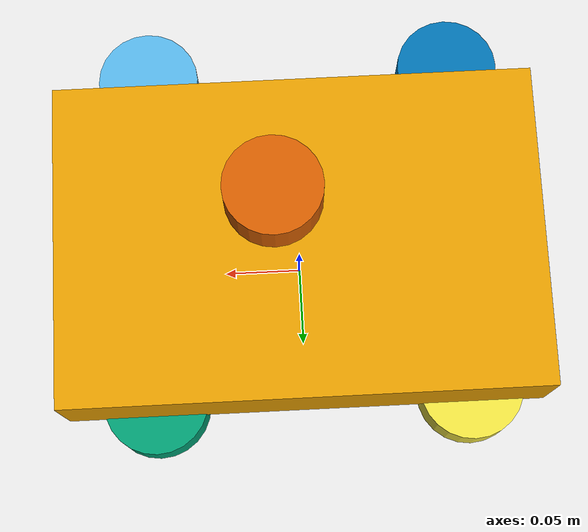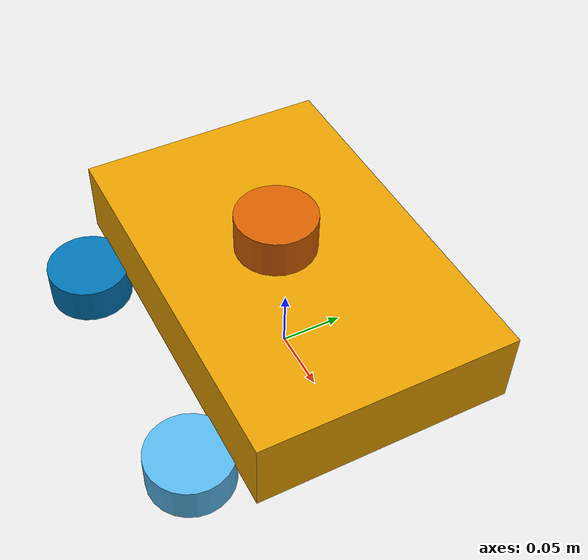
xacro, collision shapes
<?xml version="1.0"?>
<robot name="hai_robot" xmlns:xacro="http://www.ros.org/wiki/xacro">

  <xacro:include filename="$(find mohd_shan)/description/robot_core.xacro"/>
  <xacro:include filename="$(find mohd_shan)/description/lidar.xacro"/>
  <xacro:include filename="$(find mohd_shan)/description/gazebo_control.xacro"/>

</robot>

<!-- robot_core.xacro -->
<robot name="hai_robot" xmlns:xacro="http://www.ros.org/wiki/xacro">

  <!-- BASE LINK -->
  <link name="base_link">
    <inertial>
      <origin xyz="0 0 0.075" rpy="0 0 0"/>
      <mass value="8.0"/>
      <inertia ixx="0.08" iyy="0.12" izz="0.18" ixy="0.0" ixz="0.0" iyz="0.0"/>
    </inertial>

    <visual>
      <geometry>
        <mesh filename="package://mohd_shan/meshes/base_link.stl" scale="0.001 0.001 0.001"/>
      </geometry>
    </visual>

    <collision>
      <origin xyz="0 0 0.075"/>
      <geometry>
        <box size="0.30 0.20 0.06"/>
      </geometry>
    </collision>
  </link>

  <!-- ========= WHEELS ========= -->

  <!-- FRONT RIGHT -->
  <link name="Link_FR">
    <inertial>
      <mass value="0.35"/>
      <inertia ixx="0.001" iyy="0.001" izz="0.001"/>
    </inertial>

    <visual>
      <origin xyz="-0.095294 0.124382 -0.009657"/>
      <geometry>
        <mesh filename="package://mohd_shan/meshes/wheel_FR_1.stl" scale="0.001 0.001 0.001"/>
      </geometry>
    </visual>

    <!-- FIXED: collision aligned -->
    <collision>
      <geometry>
        <cylinder radius="0.033" length="0.03"/>
      </geometry>
    </collision>
  </link>

  <joint name="joint_FR" type="continuous">
    <parent link="base_link"/>
    <child link="Link_FR"/>
    <origin xyz="0.095294 -0.124382 0.033"/>
    <axis xyz="0 -1 0"/>
    <dynamics damping="1.0" friction="0.2"/>
  </joint>

  <!-- FRONT LEFT -->
  <link name="Link_FL">
    <inertial>
      <mass value="0.35"/>
      <inertia ixx="0.001" iyy="0.001" izz="0.001"/>
    </inertial>

    <visual>
      <origin xyz="-0.095294 -0.090848 -0.009657"/>
      <geometry>
        <mesh filename="package://mohd_shan/meshes/wheel_FL_1.stl" scale="0.001 0.001 0.001"/>
      </geometry>
    </visual>

    <collision>
      <geometry>
        <cylinder radius="0.033" length="0.03"/>
      </geometry>
    </collision>
  </link>

  <joint name="joint_FL" type="continuous">
    <parent link="base_link"/>
    <child link="Link_FL"/>
    <origin xyz="0.095294 0.090848 0.033"/>
    <axis xyz="0 -1 0"/>
    <dynamics damping="1.0" friction="0.2"/>
  </joint>

  <!-- BACK LEFT -->
  <link name="Link_BL">
    <inertial>
      <mass value="0.35"/>
      <inertia ixx="0.001" iyy="0.001" izz="0.001"/>
    </inertial>

    <visual>
      <origin xyz="0.105062 -0.090848 -0.009657"/>
      <geometry>
        <mesh filename="package://mohd_shan/meshes/wheel_BL_1.stl" scale="0.001 0.001 0.001"/>
      </geometry>
    </visual>

    <collision>
      <geometry>
        <cylinder radius="0.033" length="0.03"/>
      </geometry>
    </collision>
  </link>

  <joint name="joint_BL" type="continuous">
    <parent link="base_link"/>
    <child link="Link_BL"/>
    <origin xyz="-0.105062 0.090848 0.033"/>
    <axis xyz="0 -1 0"/>
    <dynamics damping="1.0" friction="0.2"/>
  </joint>

  <!-- BACK RIGHT -->
  <link name="Link_BR">
    <inertial>
      <mass value="0.35"/>
      <inertia ixx="0.001" iyy="0.001" izz="0.001"/>
    </inertial>

    <visual>
      <origin xyz="0.105062 0.124382 -0.009657"/>
      <geometry>
        <mesh filename="package://mohd_shan/meshes/wheel_BR_1.stl" scale="0.001 0.001 0.001"/>
      </geometry>
    </visual>

    <collision>
      <geometry>
        <cylinder radius="0.033" length="0.03"/>
      </geometry>
    </collision>
  </link>

  <joint name="joint_BR" type="continuous">
    <parent link="base_link"/>
    <child link="Link_BR"/>
    <origin xyz="-0.105062 -0.124382 0.033"/>
    <axis xyz="0 -1 0"/>
    <dynamics damping="1.0" friction="0.2"/>
  </joint>

</robot>

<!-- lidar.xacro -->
<robot xmlns:xacro="http://www.ros.org/wiki/xacro">

  <link name="lidar_link">
    <inertial>
      <origin xyz="0 0 0" rpy="0 0 0"/>
      <mass value="0.06"/>
      <inertia ixx="1e-05" ixy="0.0" ixz="0.0" iyy="1e-05" iyz="0.0" izz="1.3e-05"/>
    </inertial>

    <visual>
      <origin xyz="-0.014612 0.016767 -0.143013" rpy="0 0 0"/>
      <geometry>
        <mesh filename="package://mohd_shan/meshes/lidar_1.stl" scale="0.001 0.001 0.001"/>
      </geometry>
    </visual>

    <collision>
      <origin xyz="0 0 0" rpy="0 0 0"/>
      <geometry>
        <cylinder radius="0.03" length="0.03"/>
      </geometry>
    </collision>
  </link>

  <joint name="lidar_joint" type="fixed">
    <origin xyz="0.014612 -0.016767 0.143013" rpy="0 0 0"/>
    <parent link="base_link"/>
    <child link="lidar_link"/>
  </joint>

  <gazebo reference="lidar_link">
    <sensor name="lidar_sensor" type="gpu_lidar">
      <always_on>true</always_on>
      <update_rate>10</update_rate>
      <visualize>true</visualize>
      <topic>/scan</topic>

      <lidar>
        <scan>
          <horizontal>
            <samples>360</samples>
            <resolution>1</resolution>
            <min_angle>-3.14159</min_angle>
            <max_angle>3.14159</max_angle>
          </horizontal>
        </scan>
        <range>
          <min>0.3</min>
          <max>12.0</max>
          <resolution>0.01</resolution>
        </range>
      </lidar>
    </sensor>
  </gazebo>

</robot>
